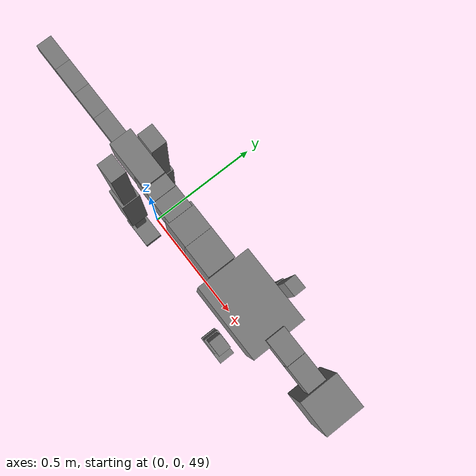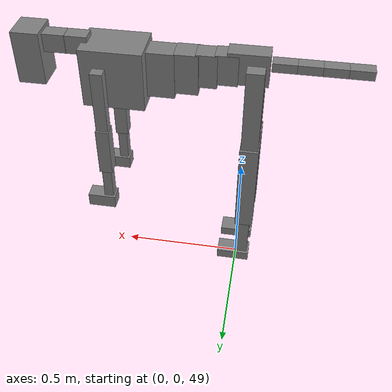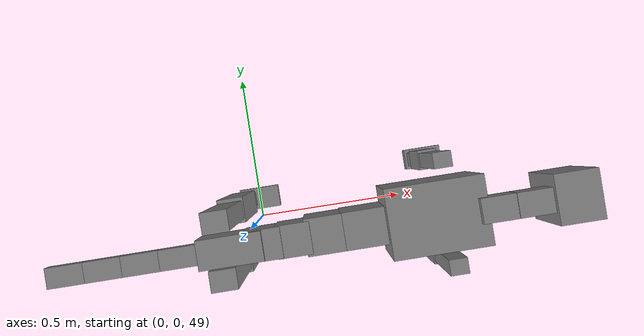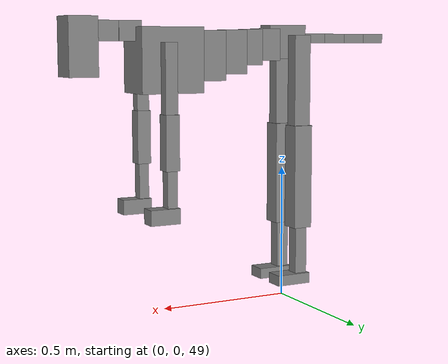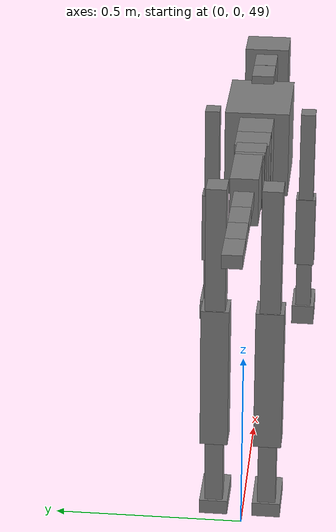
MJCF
<mujoco model="dog">

    <default>
        <joint armature="0.02" stiffness="1" damping="0.2" limited="true"/>
        <geom condim="3" friction="1 0.05 0.05" margin="0.01"/>
        <motor ctrllimited="true" ctrlrange="-1.0 1.0" forcelimited="true" gear="50"/>
    </default>

    <compiler inertiafromgeom="true" angle="radian"/>

    <option timestep="0.016" iterations="50" tolerance="1e-10" solver="Newton" jacobian="dense" cone="pyramidal"/>

    <size nconmax="20000" njmax="60000" nstack="5000000"/>
    <visual>
        <map force="0.1" zfar="30"/>
        <rgba haze="0.15 0.25 0.35 1"/>
        <quality shadowsize="2048"/>
        <global offwidth="800" offheight="800"/>
    </visual>

    <asset>
        <texture type="skybox" builtin="gradient" rgb1="0.3 0.5 0.7" rgb2="0 0 0" width="512" height="512"/>
        <texture name="texplane" type="2d" builtin="checker" rgb1=".2 .3 .4" rgb2=".1 0.15 0.2" width="512" height="512"
                 mark="cross" markrgb=".8 .8 .8"/>
        <texture name="texgeom" type="cube" builtin="flat" mark="cross" width="127" height="1278" rgb1="0.8 0.6 0.4"
                 rgb2="0.8 0.6 0.4" markrgb="1 1 1" random="0.01"/>

        <material name="matplane" reflectance="0.3" texture="texplane" texrepeat="1 1" texuniform="true"/>
        <material name="matgeom" texture="texgeom" texuniform="true" rgba="0.8 0.6 .4 1"/>
    </asset>

    <worldbody>
        <geom name="floor" pos="0 0 0" size="0 0 .25" type="plane" material="matplane" condim="3"/>

        <light directional="false" diffuse=".2 .2 .2" specular="0 0 0" pos="0 0 5" dir="0 0 -1" castshadow="false"/>
        <light mode="targetbodycom" target="torso" directional="false" diffuse=".8 .8 .8" specular="0.3 0.3 0.3"
               pos="0 0 4.0" dir="0 0 -1"/>

        <body name="root" pos="0 0 50">
            <freejoint name="root_1"/>
            <geom type="box" pos="0 0 -0.02" size="0.0774  0.0358  0.063" density="2030"/>

            <body name="spine1" pos="0.054 0 0">
                <joint name="spine1_y" axis="0 1 0" range="0 0.7" limited="true"/>
                <geom type="box" pos="0.02375 0 -0.03" size="0.04375  0.0375  0.05985" density="2030"/>

                <body name="spine2" pos="0.0612 0 0">
                    <joint name="spine2_y" axis="0 1 0" range="-0.15 0.15" limited="true"/>
                    <geom type="box" pos="0.03555  0  -0.04" size="0.04055  0.039  0.06615" density="2030"/>

                    <body name="spine3" pos="0.0730 0 0">
                        <joint name="spine3_y" axis="0 1 0" range="-0.15 0.15" limited="true"/>
                        <geom type="box" pos="0.03555  0  -0.057" size="0.04555  0.0445  0.081" density="2030"/>

                        <body name="spine4" pos="0.0780 0 0">
                            <joint name="spine4_y" axis="0 1 0" range="-0.15 0.15" limited="true"/>
                            <geom type="box" pos="0.05265  0  -0.07" size="0.05265  0.045  0.09135" density="2030"/>

                            <body name="torso" pos="0.1082 0 0">
                                <joint name="torso_y" axis="0 1 0" range="-0.15 0.15" limited="true"/>
                                <geom type="box" pos="0.11925  0  -0.085" size="0.11925  0.085  0.11745"
                                      density="2030"/>

                                <body name="neck1" pos="0.2160  0   0.0180">
                                    <joint name="neck1_y" axis="0 1 0" range="-1.2  -1" limited="true"/>
                                    <geom type="box" pos="0.0423  0  0" size="0.0423  0.03  0.036" density="2325"/>

                                    <body name="neck2" pos="0.0853  0  0">
                                        <joint name="neck2_y" axis="0 1 0" range="0.1  0" limited="true"/>
                                        <geom type="box" pos="0.0423  0  0" size="0.0423  0.03  0.036" density="2325"/>

                                        <body name="head" pos="0.0853  0  0">
                                            <joint name="head_y" axis="0 1 0" range="-0.3  -0.2" limited="true"/>
                                            <geom type="box" pos="0.0531  0  -0.055" size="0.0531  0.06  0.1044"
                                                  density="4030"/>

                                        </body>
                                    </body>
                                </body>

                                <body name="front_shoulder" pos="0.156  0   -0.0480">
                                    <joint name="front_shoulder_y" axis="0 1 0" range="-1 1.5" limited="true"/>
                                    <geom type="box" pos="0 0.13 -0.1116" size="0.0230  0.0196  0.1383" density="1158"/>
                                    <geom type="box" pos="0 -0.13 -0.1116" size="0.0230  0.0196  0.1383"
                                          density="1158"/>

                                    <body name="front_elbow" pos="0  0  -0.2233">
                                        <joint name="front_elbow_y" axis="0 1 0" range="-2 0" limited="true"/>
                                        <geom type="box" pos="0 0.13 -0.0984" size="0.0258  0.0264  0.0984"
                                              density="1081"/>
                                        <geom type="box" pos="0 -0.13 -0.0984" size="0.0258  0.0264  0.0984"
                                              density="1081"/>

                                        <body name="front_wrist" pos="0  0  -0.1969">
                                            <joint name="front_wrist_y" axis="0 1 0" range="-0.2 0" limited="true"/>
                                            <geom type="box" pos="0 0.13 -0.0728" size="0.0188  0.0209  0.0859"
                                                  density="1664"/>
                                            <geom type="box" pos="0 -0.13 -0.0728" size="0.0188  0.0209  0.0859"
                                                  density="1664"/>

                                            <body name="front_finger_end" pos="0  0  -0.1456">
                                                <joint name="front_finger_y" axis="0 1 0" range="-0.4 1"
                                                       limited="true"/>
                                                <geom type="box" pos="0.0305  0.13  -0.0126"
                                                      size="0.0559  0.0305  0.0276" density="1515"/>
                                                <geom type="box" pos="0.0305  -0.13  -0.0126"
                                                      size="0.0559  0.0305  0.0276" density="1515"/>

                                            </body>

                                        </body>
                                    </body>
                                </body>

                            </body>
                        </body>
                    </body>
                </body>
            </body>

            <body name="back_hip" pos="-0.03 0 -0.018">
                <joint name="back_hip_y" axis="0 1 0" range="-1.5 0.3" limited="true"/>
                <geom type="box" pos="0 0.07 -0.1653" size="0.0331  0.0260  0.1881" density="1154"/>
                <geom type="box" pos="0 -0.07 -0.1653" size="0.0331  0.0260  0.1881" density="1154"/>

                <body name="back_knee" pos="0  0  -0.3307">
                    <joint name="back_knee_y" axis="0 1 0" range="0 2.8" limited="true"/>
                    <geom type="box" pos="0 0.07 -0.1793" size="0.0367  0.0362  0.1949" density="1227"/>
                    <geom type="box" pos="0 -0.07 -0.1793" size="0.0367  0.0362  0.1949" density="1227"/>

                    <body name="back_ankle" pos="0  0  -0.3586">
                        <joint name="back_ankle_y" axis="0 1 0" range="-2.2 0" limited="true"/>
                        <geom type="box" pos="0 0.07 -0.1038" size="0.0238  0.0238  0.1150" density="1284"/>
                        <geom type="box" pos="0 -0.07 -0.1038" size="0.0238  0.0238  0.1150" density="1284"/>

                        <body name="back_toe_end" pos="0  0  -0.2076">
                            <joint name="back_toe_y" axis="0 1 0" range="-0.4 1" limited="true"/>
                            <geom type="box" pos="0.0370  0.07  -0.0049" size="0.0678  0.0370  0.0199" density="1515"/>
                            <geom type="box" pos="0.0370  -0.07  -0.0049" size="0.0678  0.0370  0.0199" density="1515"/>

                        </body>
                    </body>
                </body>
            </body>

            <body name="tail1" pos="-0.074 0 -0.006">
                <joint name="tail1_y" axis="0 1 0" range="-0.2 0.2" limited="true"/>
                <geom type="box" pos="-0.0536  0  0" size="0.045  0.025  0.0175" density="1587"/>

                <body name="tail2" pos="-0.09 0 0">
                    <joint name="tail2_y" axis="0 1 0" range="-0.2 0.2" limited="true"/>
                    <geom type="box" pos="-0.0536  0  0" size="0.045  0.025  0.0175" density="1587"/>

                    <body name="tail3" pos="-0.09 0 0">
                        <joint name="tail3_y" axis="0 1 0" range="-0.2 0.2" limited="true"/>
                        <geom type="box" pos="-0.0536  0  0" size="0.045  0.025  0.0175" density="1587"/>

                        <body name="tail4" pos="-0.09 0 0">
                            <joint name="tail4_y" axis="0 1 0" range="-0.2 0.2" limited="true"/>
                            <geom type="box" pos="-0.0536  0  0" size="0.045  0.025  0.0175" density="1587"/>

                        </body>
                    </body>
                </body>
            </body>
        </body>
    </worldbody>

    <actuator>
        <motor joint="spine1_y" forcerange="-150 150     "/>
        <motor joint="spine2_y" forcerange="-150 150     "/>
        <motor joint="spine3_y" forcerange="-150 150     "/>
        <motor joint="spine4_y" forcerange="-150 150     "/>
        <motor joint="torso_y" forcerange="-150 150     "/>
        <motor joint="neck1_y" forcerange="-100 100       "/>
        <motor joint="neck2_y" forcerange="-100 100       "/>
        <motor joint="head_y" forcerange="-150 150       "/>
        <motor joint="front_shoulder_y" forcerange="-125.24 105.72"/>
        <motor joint="front_elbow_y" forcerange="-133.40 158.70"/>
        <motor joint="front_wrist_y" forcerange="-116.26 50.69"/>
        <motor joint="front_finger_y" forcerange="-28.74 93.81"/>
        <motor joint="back_hip_y" forcerange="-211.37 334.66"/>
        <motor joint="back_knee_y" forcerange="-343.48 383.05"/>
        <motor joint="back_angle_y" forcerange="-192.82 87.58"/>
        <motor joint="back_toe_y" forcerange="-111.25 104.62"/>
        <motor joint="tail1_y" forcerange="-50 50     "/>
        <motor joint="tail2_y" forcerange="-50 50     "/>
        <motor joint="tail3_y" forcerange="-50 50     "/>
        <motor joint="tail4_y" forcerange="-50 50     "/>
    </actuator>
</mujoco>
